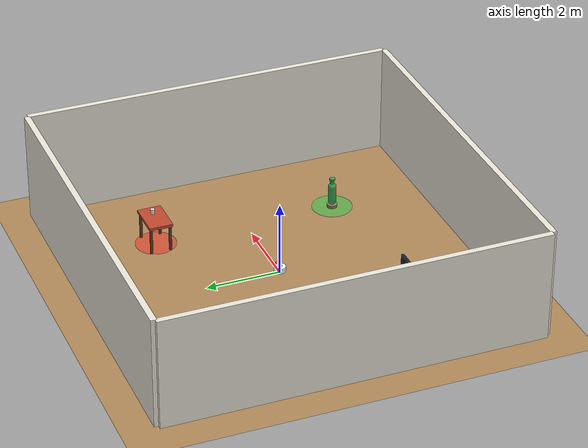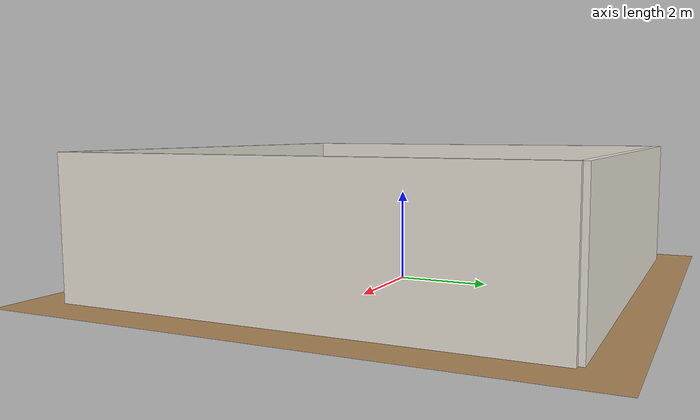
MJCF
<mujoco model="nav_arena">

  <option timestep="0.05" gravity="0 0 -9.81"/>

  <visual>
    <headlight diffuse="0.7 0.65 0.6" ambient="0.4 0.38 0.35" specular="0.1 0.1 0.1"/>
    <rgba haze="0.1 0.1 0.12 1"/>
    <global azimuth="150" elevation="-30" offwidth="1280" offheight="720"/>
    <quality shadowsize="2048"/>
  </visual>

  <asset>
    <!-- Floor: warm wood-like checker -->
    <texture name="wood" type="2d" builtin="checker" width="512" height="512"
             rgb1="0.72 0.57 0.38" rgb2="0.65 0.50 0.32"/>
    <material name="floor_mat" texture="wood" texrepeat="6 6" reflectance="0.05"/>

    <!-- Walls: light warm plaster -->
    <material name="wall_mat" rgba="0.92 0.90 0.85 1" reflectance="0.02"/>

    <!-- Shared furniture materials -->
    <material name="mat_table"  rgba="0.75 0.28 0.18 1" reflectance="0.1"/>
    <material name="mat_legs"   rgba="0.35 0.22 0.12 1" reflectance="0.05"/>
    <material name="mat_chair"  rgba="0.20 0.38 0.72 1" reflectance="0.1"/>
    <material name="mat_fabric" rgba="0.25 0.45 0.80 1" reflectance="0.02"/>
    <material name="mat_vase"   rgba="0.22 0.62 0.30 1" reflectance="0.25"/>
    <material name="mat_tv"     rgba="0.12 0.12 0.14 1" reflectance="0.4"/>
    <material name="mat_screen" rgba="0.25 0.55 0.90 1" reflectance="0.6"/>
    <material name="mat_stand"  rgba="0.25 0.25 0.28 1" reflectance="0.2"/>

    <!-- Floor glow rings under each target (visual only) -->
    <material name="glow_red"    rgba="0.95 0.20 0.15 0.55" reflectance="0.0"/>
    <material name="glow_blue"   rgba="0.20 0.40 0.95 0.55" reflectance="0.0"/>
    <material name="glow_green"  rgba="0.20 0.80 0.30 0.55" reflectance="0.0"/>
    <material name="glow_yellow" rgba="0.95 0.80 0.10 0.55" reflectance="0.0"/>
  </asset>

  <worldbody>

    <!-- ── Lighting ──────────────────────────────────────────────── -->
    <light name="sun" directional="true" pos="0 0 8" dir="0.2 -0.3 -1"
           diffuse="0.8 0.75 0.65" specular="0.2 0.2 0.2" castshadow="true"/>
    <light name="fill" directional="true" pos="0 0 5" dir="-0.2 0.3 -1"
           diffuse="0.3 0.32 0.35" specular="0.0 0.0 0.0" castshadow="false"/>

    <!-- ── Floor ─────────────────────────────────────────────────── -->
    <geom name="floor" type="plane" size="6 6 0.1" material="floor_mat" condim="3"/>

    <!-- ── Walls (no ceiling so top-down camera works) ───────────── -->
    <geom name="wall_n" type="box" size="5.05 0.08 1.5" pos="0  5.08 1.5" material="wall_mat"/>
    <geom name="wall_s" type="box" size="5.05 0.08 1.5" pos="0 -5.08 1.5" material="wall_mat"/>
    <geom name="wall_e" type="box" size="0.08 5.05 1.5" pos=" 5.08 0 1.5" material="wall_mat"/>
    <geom name="wall_w" type="box" size="0.08 5.05 1.5" pos="-5.08 0 1.5" material="wall_mat"/>

    <!-- ── Target glow rings (floor-level, no collision) ─────────── -->
    <geom name="glow_red"    type="cylinder" size="0.55 0.005" pos=" 2.5  2.5 0.005"
          material="glow_red"    contype="0" conaffinity="0"/>
    <geom name="glow_blue"   type="cylinder" size="0.55 0.005" pos="-2.5  2.5 0.005"
          material="glow_blue"   contype="0" conaffinity="0"/>
    <geom name="glow_green"  type="cylinder" size="0.55 0.005" pos=" 2.5 -2.5 0.005"
          material="glow_green"  contype="0" conaffinity="0"/>
    <geom name="glow_yellow" type="cylinder" size="0.55 0.005" pos="-2.5 -2.5 0.005"
          material="glow_yellow" contype="0" conaffinity="0"/>

    <body name="target_red" pos="2.5 2.5 0">
      <!-- tabletop -->
      <geom name="table_top"  type="box" size="0.50 0.32 0.04" pos="0 0 0.76" material="mat_table"/>
      <!-- 4 legs -->
      <geom name="table_leg1" type="cylinder" size="0.04 0.36" pos=" 0.42  0.26 0.36" material="mat_legs"/>
      <geom name="table_leg2" type="cylinder" size="0.04 0.36" pos="-0.42  0.26 0.36" material="mat_legs"/>
      <geom name="table_leg3" type="cylinder" size="0.04 0.36" pos=" 0.42 -0.26 0.36" material="mat_legs"/>
      <geom name="table_leg4" type="cylinder" size="0.04 0.36" pos="-0.42 -0.26 0.36" material="mat_legs"/>
      <!-- small decorative item on top (mug) -->
      <geom name="table_mug"  type="cylinder" size="0.055 0.065" pos="0.2 0.0 0.865" rgba="0.9 0.9 0.85 1"/>
    </body>

    <body name="target_blue" pos="-2.5 2.5 0">
      <!-- seat -->
      <geom name="chair_seat"  type="box" size="0.24 0.24 0.03" pos="0 0 0.46" material="mat_chair"/>
      <!-- seat cushion -->
      <geom name="chair_cush"  type="box" size="0.22 0.22 0.04" pos="0 0 0.51" material="mat_fabric"/>
      <!-- backrest -->
      <geom name="chair_back"  type="box" size="0.22 0.03 0.25" pos="0 -0.21 0.76" material="mat_chair"/>
      <!-- 4 legs -->
      <geom name="chair_leg1"  type="box" size="0.025 0.025 0.23" pos=" 0.19  0.19 0.23" material="mat_chair"/>
      <geom name="chair_leg2"  type="box" size="0.025 0.025 0.23" pos="-0.19  0.19 0.23" material="mat_chair"/>
      <geom name="chair_leg3"  type="box" size="0.025 0.025 0.23" pos=" 0.19 -0.19 0.23" material="mat_chair"/>
      <geom name="chair_leg4"  type="box" size="0.025 0.025 0.23" pos="-0.19 -0.19 0.23" material="mat_chair"/>
    </body>

    <body name="target_green" pos="2.5 -2.5 0">
      <!-- pedestal -->
      <geom name="vase_base"   type="cylinder" size="0.14 0.04"  pos="0 0 0.04"  rgba="0.55 0.45 0.35 1"/>
      <!-- vase body (wide capsule) -->
      <geom name="vase_body"   type="capsule"  size="0.11 0.22"  pos="0 0 0.40"  material="mat_vase"/>
      <!-- vase neck -->
      <geom name="vase_neck"   type="cylinder" size="0.055 0.09" pos="0 0 0.73"  material="mat_vase"/>
      <!-- vase lip -->
      <geom name="vase_lip"    type="cylinder" size="0.08 0.025" pos="0 0 0.845" material="mat_vase"/>
    </body>

    <body name="target_yellow" pos="-2.5 -2.5 0">
      <!-- TV stand base -->
      <geom name="tv_base"     type="box" size="0.28 0.14 0.03" pos="0 0 0.03"   material="mat_stand"/>
      <!-- TV stand neck -->
      <geom name="tv_neck"     type="box" size="0.05 0.05 0.28" pos="0 0 0.34"   material="mat_stand"/>
      <!-- TV body (bezel) -->
      <geom name="tv_bezel"    type="box" size="0.46 0.04 0.28" pos="0 0 0.90"   material="mat_tv"/>
      <!-- TV screen (slightly in front, emissive blue) -->
      <geom name="tv_screen"   type="box" size="0.42 0.035 0.24" pos="0 -0.008 0.90" material="mat_screen"/>
    </body>

    <!-- ── Robot ─────────────────────────────────────────────────── -->
    <body name="robot" pos="0 0 0.12">
      <freejoint name="robot_joint"/>
      <!-- main body: white disc -->
      <geom name="robot_body" type="cylinder" size="0.16 0.07"
            rgba="0.95 0.95 0.95 1" mass="1.0"/>
      <!-- direction nose: orange nub -->
      <geom name="robot_nose" type="box" size="0.07 0.035 0.035" pos="0.16 0 0.04"
            rgba="1.0 0.45 0.0 1" contype="0" conaffinity="0"/>
      <!-- top bump (like a Roomba sensor dome) -->
      <geom name="robot_dome" type="sphere" size="0.06" pos="0 0 0.07"
            rgba="0.3 0.3 0.35 1" contype="0" conaffinity="0"/>
    </body>

    <!-- ── Cameras ───────────────────────────────────────────────── -->
    <camera name="top_down" pos="0 0 13" euler="0 0 0"/>
    <camera name="iso"      pos="9 -9 9" xyaxes="1 0 0 0 0.7 0.7"/>

  </worldbody>

</mujoco>
